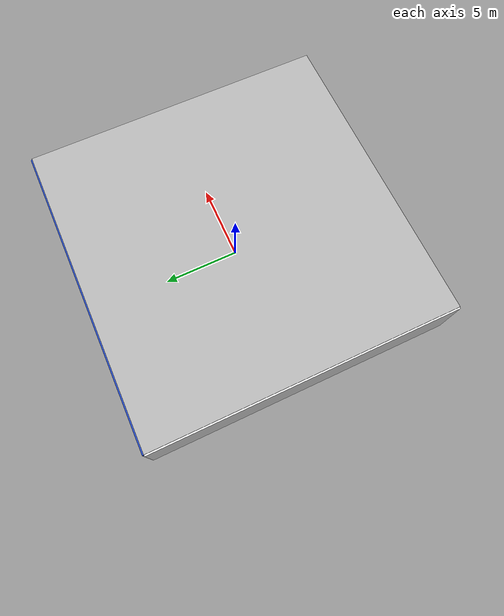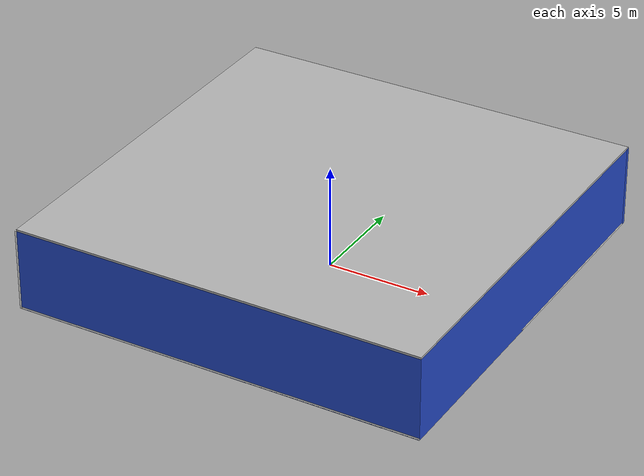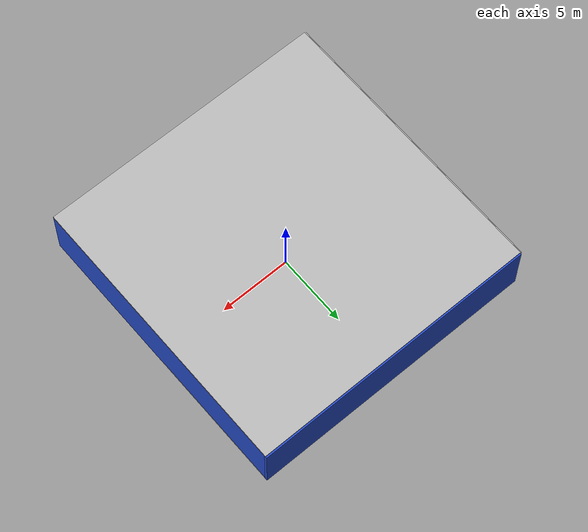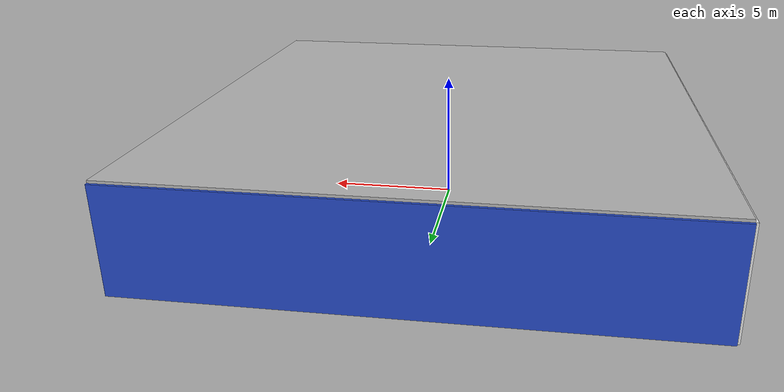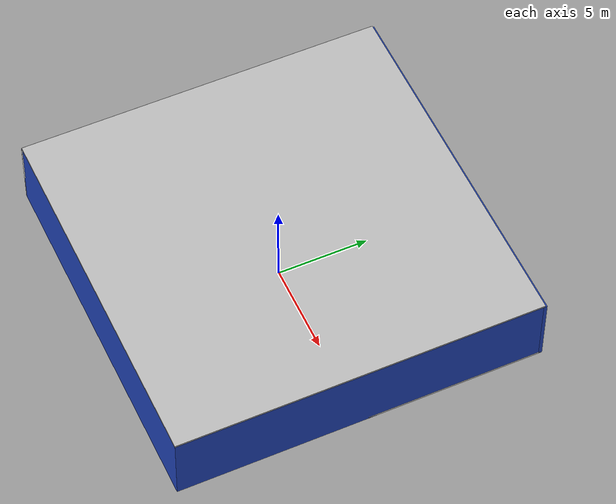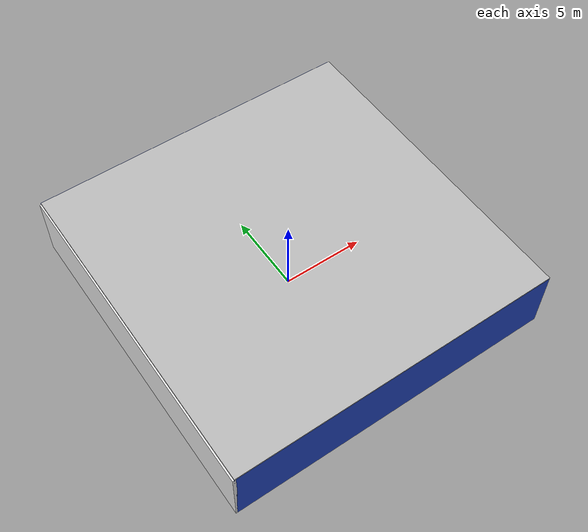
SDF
<sdf version="1.4">
 <world name="default">
  <physics type="ode">
   <max_step_size>0.001</max_step_size>
   <real_time_factor>1</real_time_factor>
   <real_time_update_rate>1000</real_time_update_rate>
   <gravity>0 0 -9.8</gravity>
  </physics>
  <scene><ambient>0.4 0.4 0.4 1</ambient><background>0.7 0.7 0.7 1</background><shadows>1</shadows></scene>
  <model name="Surrounding">
   <static>1</static>
   <link name="Ceiling">
    <collision name="Ceiling_Collision"><geometry><box><size>20 20 0.1</size></box></geometry></collision>
    <visual name="Ceiling_Visual">
     <geometry><box><size>20 20 0.1</size></box></geometry>
     <material>
      <script><uri>file://media/materials/scripts/gazebo.material</uri><name>Gazebo/PioneerBody</name></script>
     </material>
    </visual>
    <pose>0 0 4.05 0 0 0</pose>
   </link>
   <link name="Wall_South">
    <collision name="Wall_South_Collision">
     <geometry><box><size>20 0 4</size></box></geometry>
     <pose>0 0 2 0 -0 0</pose>
    </collision>
    <visual name="Wall_South_Visual">
     <pose>0 0 2 0 -0 0</pose>
     <geometry><box><size>20 0 4</size></box></geometry>
     <material>
      <script><uri>file://media/materials/scripts/gazebo.material</uri><name>Gazebo/BlueLaser</name></script>
     </material>
    </visual>
    <velocity_decay><linear>0</linear><angular>0</angular></velocity_decay>
    <pose>0 -10 0 0 -0 0</pose>
   </link>
   <link name="Wall_East">
    <collision name="Wall_21_Collision">
     <geometry><box><size>20 0 4</size></box></geometry>
     <pose>0 0 2 0 -0 0</pose>
    </collision>
    <visual name="Wall_21_Visual">
     <pose>0 0 2 0 -0 0</pose>
     <geometry><box><size>20 0 4</size></box></geometry>
     <material>
      <script><uri>file://media/materials/scripts/gazebo.material</uri><name>Gazebo/BlueLaser</name></script>
     </material>
    </visual>
    <velocity_decay><linear>0</linear><angular>0</angular></velocity_decay>
    <pose>10 0 0 0 -0 1.5708</pose>
   </link>
   <link name="Wall_North">
    <collision name="Wall_22_Collision">
     <geometry><box><size>20 0.2 4</size></box></geometry>
     <pose>0 0 2 0 -0 0</pose>
    </collision>
    <visual name="Wall_22_Visual">
     <pose>0 0 2 0 -0 0</pose>
     <geometry><box><size>20 0.2 4</size></box></geometry>
     <material>
      <script><uri>file://media/materials/scripts/gazebo.material</uri><name>Gazebo/BlueGlow</name></script>
     </material>
    </visual>
    <velocity_decay><linear>0</linear><angular>0</angular></velocity_decay>
    <pose>0 10 0 0 -0 0</pose>
   </link>
   <link name="Wall_West">
    <collision name="Wall_23_Collision">
     <geometry><box><size>20 0.2 4</size></box></geometry>
     <pose>0 0 2 0 -0 0</pose>
    </collision>
    <visual name="Wall_23_Visual">
     <pose>0 0 2 0 -0 0</pose>
     <geometry><box><size>20 0.2 4</size></box></geometry>
     <material>
      <script><uri>file://media/materials/scripts/gazebo.material</uri><name>Gazebo/WhiteGlow</name></script>
     </material>
    </visual>
    <velocity_decay><linear>0</linear><angular>0</angular></velocity_decay>
    <pose>-10 0 0 0 0 -1.5708</pose>
   </link>
   <link name="Ground_link">
    <collision name="collision">
     <pose>0 0 .05 0 -0 0</pose>
     <geometry><box><size>20 20 0.1</size></box></geometry>
    </collision>
    <visual name="visual">
     <pose>0 0 .05 0 -0 0</pose>
     <geometry><box><size>20 20 0.1</size></box></geometry>
     <material>
      <script><uri>file://media/materials/scripts/gazebo.material</uri><name>Gazebo/WhiteGlow</name></script>
     </material>
    </visual>
   </link>
   <static>1</static>
  </model>
  <spherical_coordinates>
   <surface_model>EARTH_WGS84</surface_model>
   <latitude_deg>0</latitude_deg>
   <longitude_deg>0</longitude_deg>
   <elevation>0</elevation>
   <heading_deg>0</heading_deg>
  </spherical_coordinates>
  <light name="lightball_0" type="diffuse">
   <diffuse>0.8 0.8 0.8 1</diffuse>
   <specular>0.2 0.2 0.2 1</specular>
   <attenuation>
    <range>100</range>
    <constant>0.7</constant>
    <linear>0.01</linear>
    <quadratic>0.001</quadratic>
   </attenuation>
   <direction>-0.5 0.1 -0.9</direction>
   <pose>-8.45084451792 -0.0724670643687 2.71861853021 0 0 0</pose>
  </light>
  <light name="lightball_1" type="diffuse">
   <diffuse>0.8 0.8 0.8 1</diffuse>
   <specular>0.2 0.2 0.2 1</specular>
   <attenuation>
    <range>100</range>
    <constant>0.7</constant>
    <linear>0.01</linear>
    <quadratic>0.001</quadratic>
   </attenuation>
   <direction>-0.5 0.1 -0.9</direction>
   <pose>-3.47692403391 8.35228352844 0.671616535536 0 0 0</pose>
  </light>
  <light name="lightball_2" type="diffuse">
   <diffuse>0.8 0.8 0.8 1</diffuse>
   <specular>0.2 0.2 0.2 1</specular>
   <attenuation>
    <range>100</range>
    <constant>0.7</constant>
    <linear>0.01</linear>
    <quadratic>0.001</quadratic>
   </attenuation>
   <direction>-0.5 0.1 -0.9</direction>
   <pose>-3.97484404372 8.61314810587 1.88452684726 0 0 0</pose>
  </light>
  <light name="lightball_3" type="diffuse">
   <diffuse>0.8 0.8 0.8 1</diffuse>
   <specular>0.2 0.2 0.2 1</specular>
   <attenuation>
    <range>100</range>
    <constant>0.7</constant>
    <linear>0.01</linear>
    <quadratic>0.001</quadratic>
   </attenuation>
   <direction>-0.5 0.1 -0.9</direction>
   <pose>6.46328596651 -9.42581362364 1.63756872102 0 0 0</pose>
  </light>
  <light name="lightball_4" type="diffuse">
   <diffuse>0.8 0.8 0.8 1</diffuse>
   <specular>0.2 0.2 0.2 1</specular>
   <attenuation>
    <range>100</range>
    <constant>0.7</constant>
    <linear>0.01</linear>
    <quadratic>0.001</quadratic>
   </attenuation>
   <direction>-0.5 0.1 -0.9</direction>
   <pose>-5.77760245196 -2.0267872039 1.20745017518 0 0 0</pose>
  </light>
  <light name="lightball_5" type="diffuse">
   <diffuse>0.8 0.8 0.8 1</diffuse>
   <specular>0.2 0.2 0.2 1</specular>
   <attenuation>
    <range>100</range>
    <constant>0.7</constant>
    <linear>0.01</linear>
    <quadratic>0.001</quadratic>
   </attenuation>
   <direction>-0.5 0.1 -0.9</direction>
   <pose>-4.17736412511 4.64403516292 3.50172292874 0 0 0</pose>
  </light>
  <light name="lightball_6" type="diffuse">
   <diffuse>0.8 0.8 0.8 1</diffuse>
   <specular>0.2 0.2 0.2 1</specular>
   <attenuation>
    <range>100</range>
    <constant>0.7</constant>
    <linear>0.01</linear>
    <quadratic>0.001</quadratic>
   </attenuation>
   <direction>-0.5 0.1 -0.9</direction>
   <pose>6.74789729825 -4.24807870422 2.74633585776 0 0 0</pose>
  </light>
  <light name="lightball_7" type="diffuse">
   <diffuse>0.8 0.8 0.8 1</diffuse>
   <specular>0.2 0.2 0.2 1</specular>
   <attenuation>
    <range>100</range>
    <constant>0.7</constant>
    <linear>0.01</linear>
    <quadratic>0.001</quadratic>
   </attenuation>
   <direction>-0.5 0.1 -0.9</direction>
   <pose>-0.420233796569 9.53456802391 3.32597277142 0 0 0</pose>
  </light>
  <include><uri>model://table</uri><pose>-8.03833714202 -0.828883091693 0 0 0 2.177848492</pose></include>
  <include>
   <uri>model://construction_cone</uri>
   <pose>-4.68575562984 7.60917645346 0 0 0 0.830529562025</pose>
  </include>
  <include>
   <uri>model://robocup_3Dsim_goal</uri>
   <pose>4.51659024238 -8.15314923635 0 0 0 2.04365210534</pose>
  </include>
  <include><uri>model://cabinet</uri><pose>4.71790994984 -1.85857294809 0 0 0 1.79996812441</pose></include>
  <include>
   <uri>model://textured_shapes</uri>
   <pose>7.747034266 2.08230086218 0 0 0 0.698841792794</pose>
  </include>
 </world>
</sdf>

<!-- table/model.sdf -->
<sdf version="1.5">
  <model name="table">
    <static>true</static>
    <link name="link">
      <collision name="surface">
        <pose>0 0 1.0 0 0 0</pose>
        <geometry>
          <box>
            <size>1.5 0.8 0.03</size>
          </box>
        </geometry>
        <surface>
          <friction>
            <ode>
              <mu>0.6</mu>
              <mu2>0.6</mu2>
            </ode>
          </friction>
        </surface>
      </collision>
      <visual name="visual1">
        <pose>0 0 1.0 0 0 0</pose>
        <geometry>
          <box>
            <size>1.5 0.8 0.03</size>
          </box>
        </geometry>
        <material>
          <script>
            <uri>model://media/materials/scripts/gazebo.material</uri>
            <name>Gazebo/Wood</name>
          </script>
        </material>
      </visual>
      <collision name="front_left_leg">
        <pose>0.68 0.38 0.5 0 0 0</pose>
        <geometry>
          <cylinder>
            <radius>0.02</radius>
            <length>1.0</length>
          </cylinder>
        </geometry>
      </collision>
      <visual name="front_left_leg">
        <pose>0.68 0.38 0.5 0 0 0</pose>
        <geometry>
          <cylinder>
            <radius>0.02</radius>
            <length>1.0</length>
          </cylinder>
        </geometry>
        <material>
          <script>
            <uri>model://media/materials/scripts/gazebo.material</uri>
            <name>Gazebo/Grey</name>
          </script>
        </material>
      </visual>
      <collision name="front_right_leg">
        <pose>0.68 -0.38 0.5 0 0 0</pose>
        <geometry>
          <cylinder>
            <radius>0.02</radius>
            <length>1.0</length>
          </cylinder>
        </geometry>
      </collision>
      <visual name="front_right_leg">
        <pose>0.68 -0.38 0.5 0 0 0</pose>
        <geometry>
          <cylinder>
            <radius>0.02</radius>
            <length>1.0</length>
          </cylinder>
        </geometry>
        <material>
          <script>
            <uri>model://media/materials/scripts/gazebo.material</uri>
            <name>Gazebo/Grey</name>
          </script>
        </material>
      </visual>
      <collision name="back_right_leg">
        <pose>-0.68 -0.38 0.5 0 0 0</pose>
        <geometry>
          <cylinder>
            <radius>0.02</radius>
            <length>1.0</length>
          </cylinder>
        </geometry>
      </collision>
      <visual name="back_right_leg">
        <pose>-0.68 -0.38 0.5 0 0 0</pose>
        <geometry>
          <cylinder>
            <radius>0.02</radius>
            <length>1.0</length>
          </cylinder>
        </geometry>
        <material>
          <script>
            <uri>model://media/materials/scripts/gazebo.material</uri>
            <name>Gazebo/Grey</name>
          </script>
        </material>
      </visual>
      <collision name="back_left_leg">
        <pose>-0.68 0.38 0.5 0 0 0</pose>
        <geometry>
          <cylinder>
            <radius>0.02</radius>
            <length>1.0</length>
          </cylinder>
        </geometry>
      </collision>
      <visual name="back_left_leg">
        <pose>-0.68 0.38 0.5 0 0 0</pose>
        <geometry>
          <cylinder>
            <radius>0.02</radius>
            <length>1.0</length>
          </cylinder>
        </geometry>
        <material>
          <script>
            <uri>model://media/materials/scripts/gazebo.material</uri>
            <name>Gazebo/Grey</name>
          </script>
        </material>
      </visual>
    </link>
  </model>
</sdf>

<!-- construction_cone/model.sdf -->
<sdf version="1.5">
  <model name="Construction Cone">
    <link name="link">
      <collision name="collision">
        <geometry>
          <mesh>
            <scale>10 10 10</scale>
            <uri>file://isr-testbed/construction_cone/meshes/construction_cone.dae</uri>
          </mesh>
        </geometry>
      </collision>
      <visual name="visual">
        <geometry>
          <mesh>
            <scale>10 10 10</scale>
            <uri>file://isr-testbed/construction_cone/meshes/construction_cone.dae</uri>
          </mesh>
        </geometry>
      </visual>
    </link>
  </model>
</sdf>

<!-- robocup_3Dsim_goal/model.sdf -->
<sdf version="1.5">
  <model name="robocup_3d_goal">
    <static>true</static>
    <link name="left_post">
      <pose>0 1.05 0.45 0 0 0</pose>
      <collision name="collision">
        <geometry>
          <cylinder>
            <radius>0.05</radius>
            <length>0.9</length>
          </cylinder>
        </geometry>
      </collision>
      <visual name="visual">
        <geometry>
          <cylinder>
            <radius>0.05</radius>
            <length>0.9</length>
          </cylinder>
        </geometry>
        <material>
          <script>
            <uri>file://media/materials/scripts/gazebo.material</uri>
            <name>Gazebo/ZincYellow</name>
          </script>
        </material>
      </visual>
    </link>
    <link name="left_support_horiz_lower">
      <pose>0.30 1.05 0.01 0 0 0</pose>
      <collision name="collision">
        <geometry>
          <box>
            <size>0.50 0.02 0.02</size>
          </box>
        </geometry>
      </collision>
      <visual name="visual">
        <geometry>
          <box>
            <size>0.50 0.02 0.02</size>
          </box>
        </geometry>
        <material>
          <script>
            <uri>file://media/materials/scripts/gazebo.material</uri>
            <name>Gazebo/White</name>
          </script>
        </material>
      </visual>
    </link>
    <link name="left_support_horiz_upper">
      <pose>0.30 1.05 0.79 0 0 0</pose>
      <collision name="collision">
        <geometry>
          <box>
            <size>0.50 0.02 0.02</size>
          </box>
        </geometry>
      </collision>
      <visual name="visual">
        <geometry>
          <box>
            <size>0.50 0.02 0.02</size>
          </box>
        </geometry>
        <material>
          <script>
            <uri>file://media/materials/scripts/gazebo.material</uri>
            <name>Gazebo/White</name>
          </script>
        </material>
      </visual>
    </link>
    <link name="left_support_vertical">
      <pose>0.56 1.05 0.4 0 1.5708 0</pose>
      <collision name="collision">
        <geometry>
          <box>
            <size>0.80 0.02 0.02</size>
          </box>
        </geometry>
      </collision>
      <visual name="visual">
        <geometry>
          <box>
            <size>0.80 0.02 0.02</size>
          </box>
        </geometry>
        <material>
          <script>
            <uri>file://media/materials/scripts/gazebo.material</uri>
            <name>Gazebo/White</name>
          </script>
        </material>
      </visual>
    </link>
    <link name="right_support_horiz_lower">
      <pose>0.30 -1.05 0.01 0 0 0</pose>
      <collision name="collision">
        <geometry>
          <box>
            <size>0.50 0.02 0.02</size>
          </box>
        </geometry>
      </collision>
      <visual name="visual">
        <geometry>
          <box>
            <size>0.50 0.02 0.02</size>
          </box>
        </geometry>
        <material>
          <script>
            <uri>file://media/materials/scripts/gazebo.material</uri>
            <name>Gazebo/White</name>
          </script>
        </material>
      </visual>
    </link>
    <link name="right_support_horiz_upper">
      <pose>0.30 -1.05 0.79 0 0 0</pose>
      <collision name="collision">
        <geometry>
          <box>
            <size>0.50 0.02 0.02</size>
          </box>
        </geometry>
      </collision>
      <visual name="visual">
        <geometry>
          <box>
            <size>0.50 0.02 0.02</size>
          </box>
        </geometry>
        <material>
          <script>
            <uri>file://media/materials/scripts/gazebo.material</uri>
            <name>Gazebo/White</name>
          </script>
        </material>
      </visual>
    </link>
    <link name="right_support_vertical">
      <pose>0.56 -1.05 0.4 0 1.5708 0</pose>
      <collision name="collision">
        <geometry>
          <box>
            <size>0.80 0.02 0.02</size>
          </box>
        </geometry>
      </collision>
      <visual name="visual">
        <geometry>
          <box>
            <size>0.80 0.02 0.02</size>
          </box>
        </geometry>
        <material>
          <script>
            <uri>file://media/materials/scripts/gazebo.material</uri>
            <name>Gazebo/White</name>
          </script>
        </material>
      </visual>
    </link>
    <link name="center_support_horiz_lower">
      <pose>0.56 0 0.01 0 1.5708 0</pose>
      <collision name="collision">
        <geometry>
          <box>
            <size>0.02 2.08 0.02</size>
          </box>
        </geometry>
      </collision>
      <visual name="visual">
        <geometry>
          <box>
            <size>0.02 2.08 0.02</size>
          </box>
        </geometry>
        <material>
          <script>
            <uri>file://media/materials/scripts/gazebo.material</uri>
            <name>Gazebo/White</name>
          </script>
        </material>
      </visual>
    </link>
    <link name="center_support_horiz_upper">
      <pose>0.56 0 0.79 0 1.5708 0</pose>
      <collision name="collision">
        <geometry>
          <box>
            <size>0.02 2.08 0.02</size>
          </box>
        </geometry>
      </collision>
      <visual name="visual">
        <geometry>
          <box>
            <size>0.02 2.08 0.02</size>
          </box>
        </geometry>
        <material>
          <script>
            <uri>file://media/materials/scripts/gazebo.material</uri>
            <name>Gazebo/White</name>
          </script>
        </material>
      </visual>
    </link>
    <link name="right_post">
      <pose>0 -1.05 0.45 0 0 0</pose>
      <collision name="collision">
        <geometry>
          <cylinder>
            <radius>0.05</radius>
            <length>0.9</length>
          </cylinder>
        </geometry>
      </collision>
      <visual name="visual">
        <geometry>
          <cylinder>
            <radius>0.05</radius>
            <length>0.9</length>
          </cylinder>
        </geometry>
        <material>
          <script>
            <uri>file://media/materials/scripts/gazebo.material</uri>
            <name>Gazebo/ZincYellow</name>
          </script>
        </material>
      </visual>
    </link>
    <link name="crossbar">
      <pose>0 0 0.85 1.57 1.57 0</pose>
      <collision name="collision">
        <geometry>
          <cylinder>
            <radius>0.05</radius>
            <length>2.0</length>
          </cylinder>
        </geometry>
      </collision>
      <visual name="visual">
        <geometry>
          <cylinder>
            <radius>0.05</radius>
            <length>2.0</length>
          </cylinder>
        </geometry>
        <material>
          <script>
            <uri>file://media/materials/scripts/gazebo.material</uri>
            <name>Gazebo/ZincYellow</name>
          </script>
        </material>
      </visual>
    </link>
    <link name="center_net">
      <pose>0.56 0 0.40 0 0 0</pose>
      <collision name="collision">
        <geometry>
          <box>
            <size>0.01 2.1 0.80</size>
          </box>
        </geometry>
      </collision>
      <visual name="visual">
        <geometry>
          <box>
            <size>0.01 2.1 0.80</size>
          </box>
        </geometry>
        <material>
          <script>
            <uri>model://../model_source/models/robocup09_spl_field/materials/scripts/</uri>
            <uri>model://../model_source/models/robocup09_spl_field/materials/textures/</uri>
            <name>RoboCup/Net</name>
          </script>
        </material>
      </visual>
    </link>
    <link name="left_net">
      <pose>0.30 1.05 0.40 0 0 0</pose>
      <collision name="collision">
        <geometry>
          <box>
            <size>0.50 0.01 0.76</size>
          </box>
        </geometry>
      </collision>
      <visual name="visual">
        <geometry>
          <box>
            <size>0.50 0.01 0.76</size>
          </box>
        </geometry>
        <material>
          <script>
            <uri>model://../model_source/models/robocup09_spl_field/materials/scripts/</uri>
            <uri>model://../model_source/models/robocup09_spl_field/materials/textures/</uri>
            <name>RoboCup/Net</name>
          </script>
        </material>
      </visual>
    </link>
    <link name="right_net">
      <pose>0.30 -1.05 0.40 0 0 0</pose>
      <collision name="collision">
        <geometry>
          <box>
            <size>0.50 0.01 0.76</size>
          </box>
        </geometry>
      </collision>
      <visual name="visual">
        <geometry>
          <box>
            <size>0.50 0.01 0.76</size>
          </box>
        </geometry>
        <material>
          <script>
            <uri>model://../model_source/models/robocup09_spl_field/materials/scripts/</uri>
            <uri>model://../model_source/models/robocup09_spl_field/materials/textures/</uri>
            <name>RoboCup/Net</name>
          </script>
        </material>
      </visual>
    </link>
  </model>
</sdf>

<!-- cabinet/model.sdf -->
<sdf version="1.5">
  <model name="cabinet">
    <static>true</static>
    <link name="cabinet_bottom_plate">
      <inertial>
        <pose>0 0 -1 0 0 0</pose>
        <inertia>
          <ixx>2.050000</ixx>
          <ixy>0</ixy>
          <ixz>0</ixz>
          <iyy>2.050000</iyy>
          <iyz>0</iyz>
          <izz>2.050000</izz>
        </inertia>
        <mass>25.000000</mass>
      </inertial>
      <collision name="cabinet_bottom_plate_geom">
        <pose>0 0 0.010000 0 0 0</pose>
        <geometry>
          <box>
            <size>0.450000 0.450000 0.020000</size>
          </box>
        </geometry>
      </collision>
      <visual name="cabinet_bottom_plate_geom_visual">
        <pose>0 0 0.010000 0 0 0</pose>
        <geometry>
          <box>
            <size>0.450000 0.450000 0.020000</size>
          </box>
        </geometry>
        <material>
          <script>
            <uri>model://media/materials/scripts/gazebo.material</uri>
            <name>Gazebo/Wood</name>
          </script>
        </material>
      </visual>
      <collision name="cabinet_bottom_plate_geom_cabinet_back_plate">
        <pose>0.235000 0 0.510000 0 0 0</pose>
        <geometry>
          <box>
            <size>0.020000 0.450000 1.020000</size>
          </box>
        </geometry>
      </collision>
      <visual name="cabinet_bottom_plate_geom_cabinet_back_plate_visual">
        <pose>0.235000 0 0.510000 0 0 0</pose>
        <geometry>
          <box>
            <size>0.020000 0.450000 1.020000</size>
          </box>
        </geometry>
        <material>
          <script>
            <uri>model://media/materials/scripts/gazebo.material</uri>
            <name>Gazebo/Wood</name>
          </script>
        </material>
      </visual>
      <collision name="cabinet_bottom_plate_geom_cabinet_left_plate">
        <pose>0 0.235000 0.510000 0 0 0</pose>
        <geometry>
          <box>
            <size>0.450000 0.020000 1.020000</size>
          </box>
        </geometry>
      </collision>
      <visual name="cabinet_bottom_plate_geom_cabinet_left_plate_visual">
        <pose>0 0.235000 0.510000 0 0 0</pose>
        <geometry>
          <box>
            <size>0.450000 0.020000 1.020000</size>
          </box>
        </geometry>
        <material>
          <script>
            <uri>model://media/materials/scripts/gazebo.material</uri>
            <name>Gazebo/Wood</name>
          </script>
        </material>
      </visual>
      <collision name="cabinet_bottom_plate_geom_cabinet_middle_plate">
        <pose>0 0 0.510000 0 0 0</pose>
        <geometry>
          <box>
            <size>0.450000 0.450000 0.020000</size>
          </box>
        </geometry>
      </collision>
      <visual name="cabinet_bottom_plate_geom_cabinet_middle_plate_visual">
        <pose>0 0 0.510000 0 0 0</pose>
        <geometry>
          <box>
            <size>0.450000 0.450000 0.020000</size>
          </box>
        </geometry>
        <material>
          <script>
            <uri>model://media/materials/scripts/gazebo.material</uri>
            <name>Gazebo/Wood</name>
          </script>
        </material>
      </visual>
      <collision name="cabinet_bottom_plate_geom_cabinet_right_plate">
        <pose>0 -0.235000 0.510000 0 0 0</pose>
        <geometry>
          <box>
            <size>0.450000 0.020000 1.020000</size>
          </box>
        </geometry>
      </collision>
      <visual name="cabinet_bottom_plate_geom_cabinet_right_plate_visual">
        <pose>0 -0.235000 0.510000 0 0 0</pose>
        <geometry>
          <box>
            <size>0.450000 0.020000 1.020000</size>
          </box>
        </geometry>
        <material>
          <script>
            <uri>model://media/materials/scripts/gazebo.material</uri>
            <name>Gazebo/Wood</name>
          </script>
        </material>
      </visual>
      <collision name="cabinet_bottom_plate_geom_cabinet_top_plate">
        <pose>0 0 1.010000 0 0 0</pose>
        <geometry>
          <box>
            <size>0.450000 0.450000 0.020000</size>
          </box>
        </geometry>
      </collision>
      <visual name="cabinet_bottom_plate_geom_cabinet_top_plate_visual">
        <pose>0 0 1.010000 0 0 0</pose>
        <geometry>
          <box>
            <size>0.450000 0.450000 0.020000</size>
          </box>
        </geometry>
        <material>
          <script>
            <uri>model://media/materials/scripts/gazebo.material</uri>
            <name>Gazebo/Wood</name>
          </script>
        </material>
      </visual>
    </link>
  </model>
</sdf>

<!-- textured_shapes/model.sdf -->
<sdf version="1.6">
  <model name="textured_shapes">
    <pose>0 0 0.5 0 0 0</pose>
    <link name="box">
      <pose>0 -1.5 0 0 0 0</pose>
      <collision name="collision">
        <geometry>
          <box>
            <size>1 1 1</size>
          </box>
        </geometry>
      </collision>
      <visual name="visual">
        <geometry>
          <box>
            <size>1 1 1</size>
          </box>
        </geometry>
        <material>
          <script>
            <uri>model://../model_source/models/textured_shapes/materials/scripts</uri>
            <uri>model://../model_source/models/textured_shapes/materials/textures</uri>
            <name>TexturedShape/Squares</name>
          </script>
        </material>
      </visual>
    </link>
    <link name="sphere">
      <collision name="collision">
        <geometry>
          <sphere>
            <radius>0.5</radius>
          </sphere>
        </geometry>
      </collision>
      <visual name="visual">
        <geometry>
          <sphere>
            <radius>0.5</radius>
          </sphere>
        </geometry>
        <material>
          <script>
            <uri>model://../model_source/models/textured_shapes/materials/scripts</uri>
            <uri>model://../model_source/models/textured_shapes/materials/textures</uri>
            <name>TexturedShape/Squares</name>
          </script>
        </material>
      </visual>
    </link>
    <link name="cylinder">
      <pose>0 1.5 0 0 0 0</pose>
      <collision name="collision">
        <geometry>
          <cylinder>
            <radius>0.5</radius>
            <length>1</length>
          </cylinder>
        </geometry>
      </collision>
      <visual name="visual">
        <geometry>
          <cylinder>
            <radius>0.5</radius>
            <length>1</length>
          </cylinder>
        </geometry>
        <material>
          <script>
            <uri>model://../model_source/models/textured_shapes/materials/scripts</uri>
            <uri>model://../model_source/models/textured_shapes/materials/textures</uri>
            <name>TexturedShape/Squares</name>
          </script>
        </material>
      </visual>
    </link>
  </model>
</sdf>
